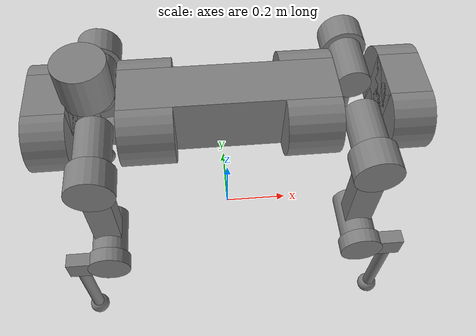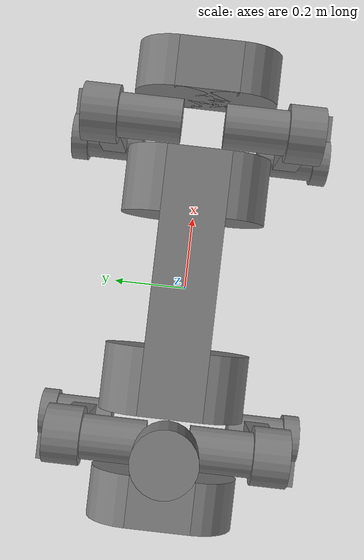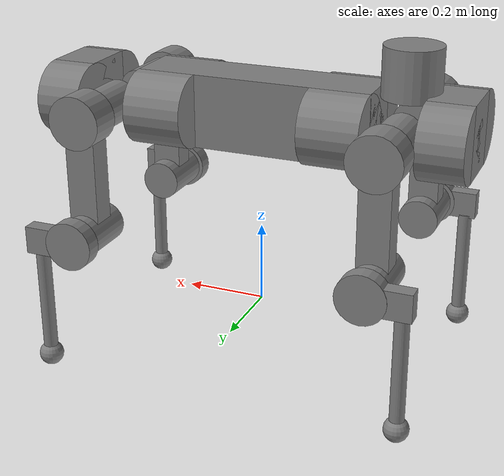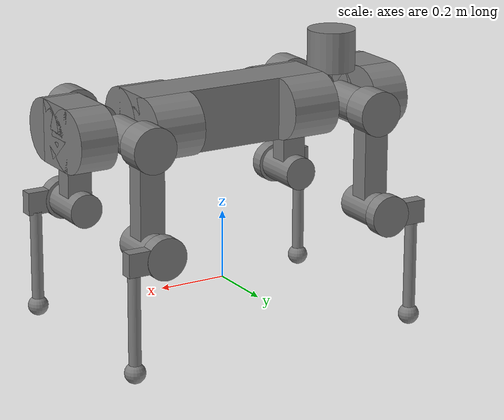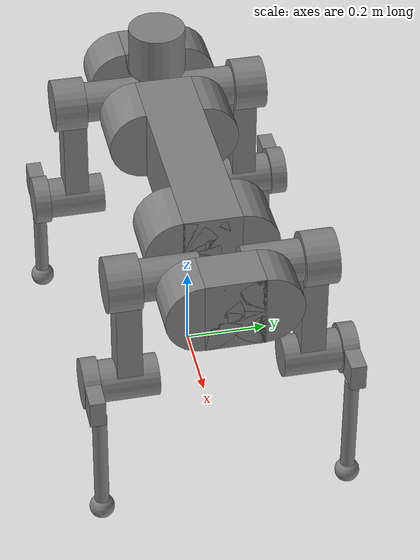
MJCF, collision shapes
<mujoco model="anymal_c">
  <compiler angle="radian" meshdir="assets/" texturedir="assets/"/>

  <option impratio="100" cone="elliptic"/>

  <default>
    <material specular="0" shininess="0.25"/>
    <default class="anymal_c">
      <joint damping="1" frictionloss="0.1"/>
      <default class="visual">
        <geom type="mesh" contype="0" conaffinity="0" group="2"/>
        <default class="visual_zflip"/>
      </default>
      <default class="collision">
        <geom type="cylinder" group="3"/>
        <default class="foot">
          <geom size="0.03 0 0" type="sphere" condim="6" priority="1" friction="0.8 0.02 0.01" solimp="0.015 1 0.031"/>
        </default>
      </default>
      <default class="affine">
        <general ctrlrange="-6.28 6.28" forcerange="-80 80" biastype="affine" gainprm="100" biasprm="0 -100"/>
      </default>
    </default>
  </default>

  <asset>
    <texture type="2d" colorspace="linear" name="base" file="base.png"/>
    <texture type="2d" colorspace="linear" name="top_shell" file="top_shell.png"/>
    <texture type="2d" colorspace="linear" name="bottom_shell" file="bottom_shell.png"/>
    <texture type="2d" colorspace="linear" name="remote" file="remote.png"/>
    <texture type="2d" colorspace="linear" name="hatch" file="hatch.png"/>
    <texture type="2d" colorspace="linear" name="handle" file="handle.png"/>
    <texture type="2d" colorspace="linear" name="face" file="face.png"/>
    <texture type="2d" colorspace="linear" name="battery" file="battery.png"/>
    <texture type="2d" colorspace="linear" name="lidar_cage" file="lidar_cage.png"/>
    <texture type="2d" colorspace="linear" name="depth_camera" file="depth_camera.png"/>
    <texture type="2d" colorspace="linear" name="wide_angle_camera" file="wide_angle_camera.png"/>
    <texture type="2d" colorspace="linear" name="lidar" file="lidar.png"/>
    <texture type="2d" colorspace="linear" name="drive" file="drive.png"/>
    <texture type="2d" colorspace="linear" name="hip_l" file="hip_l.png"/>
    <texture type="2d" colorspace="linear" name="shank_l" file="shank_l.png"/>
    <texture type="2d" colorspace="linear" name="foot" file="foot.png"/>
    <texture type="2d" colorspace="linear" name="thigh" file="thigh.png"/>
    <texture type="2d" colorspace="linear" name="shank_r" file="shank_r.png"/>
    <texture type="2d" colorspace="linear" name="hip_r" file="hip_r.png"/>
    <material name="black_plastic" rgba="0.007 0.007 0.007 1"/>
    <material name="green" rgba="0.052 0.178 0.033 1"/>
    <material name="red" rgba="0.178 0.006 0.005 1"/>
    <material name="yellow" rgba="0.178 0.119 0.006 1"/>
    <material name="lwl" rgba="0.8 0.8 0.8 1"/>
    <material name="base" texture="base"/>
    <material name="top_shell" texture="top_shell"/>
    <material name="bottom_shell" texture="bottom_shell"/>
    <material name="hip_l" texture="hip_l"/>
    <material name="thigh" texture="thigh"/>
    <material name="shank_l" texture="shank_l"/>
    <material name="foot" texture="foot"/>
    <material name="hip_r" texture="hip_r"/>
    <material name="shank" texture="shank_r"/>
    <material name="hatch" texture="hatch"/>
    <material name="remote" texture="remote"/>
    <material name="handle" texture="handle"/>
    <material name="face" texture="face"/>
    <material name="depth_camera" texture="depth_camera"/>
    <material name="wide_angle_camera" texture="wide_angle_camera"/>
    <material name="battery" texture="battery"/>
    <material name="lidar_cage" texture="lidar_cage"/>
    <material name="lidar" texture="lidar"/>
    <material name="drive" texture="drive"/>
    <mesh name="base_0" content_type="model/obj" file="base_0.obj"/>
    <mesh name="base_1" content_type="model/obj" file="base_1.obj"/>
    <mesh name="base_2" content_type="model/obj" file="base_2.obj"/>
    <mesh name="base_3" content_type="model/obj" file="base_3.obj"/>
    <mesh name="base_4" content_type="model/obj" file="base_4.obj"/>
    <mesh name="base_5" content_type="model/obj" file="base_5.obj"/>
    <mesh name="top_shell" content_type="model/obj" file="top_shell.obj"/>
    <mesh name="bottom_shell" content_type="model/obj" file="bottom_shell.obj"/>
    <mesh name="remote" content_type="model/obj" file="remote.obj"/>
    <mesh name="handle" content_type="model/obj" file="handle.obj"/>
    <mesh name="face" content_type="model/obj" file="face.obj"/>
    <mesh name="wide_angle_camera" content_type="model/obj" file="wide_angle_camera.obj"/>
    <mesh name="depth_camera" content_type="model/obj" file="depth_camera.obj"/>
    <mesh name="battery" content_type="model/obj" file="battery.obj"/>
    <mesh name="lidar_cage" content_type="model/obj" file="lidar_cage.obj"/>
    <mesh name="lidar" content_type="model/obj" file="lidar.obj"/>
    <mesh name="drive" content_type="model/obj" file="drive.obj"/>
    <mesh name="hip_l" content_type="model/obj" file="hip_l.obj"/>
    <mesh name="thigh" content_type="model/obj" file="thigh.obj"/>
    <mesh name="shank_l" content_type="model/obj" file="shank_l.obj"/>
    <mesh name="foot" content_type="model/obj" file="foot.obj"/>
    <mesh name="hip_r" content_type="model/obj" file="hip_r.obj"/>
    <mesh name="hatch" content_type="model/obj" file="hatch.obj"/>
    <mesh name="shank_r" content_type="model/obj" file="shank_r.obj"/>
  </asset>

  <worldbody>
    <light name="spotlight" target="base" pos="0 -1 2" dir="0 0 -1" cutoff="30" mode="targetbodycom"/>
    <body name="base" childclass="anymal_c" pos="0 0 0.5">
      <inertial pos="0.0025 0 0.0502071" quat="0.5 0.5 0.5 0.5" mass="19.2035" diaginertia="0.639559 0.624031 0.217374"/>
      <joint type="free" damping="0" frictionloss="0"/>
      <geom class="visual" material="green" mesh="base_0"/>
      <geom class="visual" material="yellow" mesh="base_1"/>
      <geom class="visual" material="red" mesh="base_2"/>
      <geom class="visual" material="black_plastic" mesh="base_3"/>
      <geom class="visual" material="lwl" mesh="base_4"/>
      <geom class="visual" material="base" mesh="base_5"/>
      <geom class="collision" size="0.29 0.07 0.09" type="box"/>
      <geom class="collision" size="0.09 0.0725" pos="0.2175 0.07 0" quat="0.707107 0 0.707107 0"/>
      <geom class="collision" size="0.09 0.0725" pos="-0.2175 0.07 0" quat="0.707107 0 0.707107 0"/>
      <geom class="collision" size="0.09 0.0725" pos="0.2175 -0.07 0" quat="0.707107 0 0.707107 0"/>
      <geom class="collision" size="0.09 0.0725" pos="-0.2175 -0.07 0" quat="0.707107 0 0.707107 0"/>
      <geom class="visual" material="top_shell" mesh="top_shell"/>
      <geom class="visual" material="bottom_shell" mesh="bottom_shell"/>
      <geom class="visual" material="remote" mesh="remote"/>
      <geom class="visual" material="handle" mesh="handle"/>
      <geom class="visual" pos="0.4145 0 0" quat="1 0 0 0" material="face" mesh="face"/>
      <geom class="collision" size="0.055 0.07 0.09" pos="0.4695 0 0" type="box"/>
      <geom class="collision" size="0.09 0.055" pos="0.4695 0.07 0" quat="0.707107 0 0.707107 0"/>
      <geom class="collision" size="0.09 0.055" pos="0.4695 -0.07 0" quat="0.707107 0 0.707107 0"/>
      <geom class="visual" pos="0.46165 0 -0.0292" quat="0.965926 0 0.258819 0" material="depth_camera" mesh="depth_camera"/>
      <geom class="visual" pos="0.513 0 0.01497" material="wide_angle_camera" mesh="wide_angle_camera"/>
      <geom class="visual_zflip" pos="-0.4145 0 0" quat="0 0 0 1" material="face" mesh="face"/>
      <geom class="collision" size="0.055 0.07 0.09" pos="-0.4695 0 0" quat="0 0 0 1" type="box"/>
      <geom class="collision" size="0.09 0.055" pos="-0.4695 -0.07 0" quat="0 -0.707107 0 0.707107"/>
      <geom class="collision" size="0.09 0.055" pos="-0.4695 0.07 0" quat="0 -0.707107 0 0.707107"/>
      <geom class="visual" pos="-0.46165 0 -0.0292" quat="0 -0.258819 0 0.965926" material="depth_camera" mesh="depth_camera"/>
      <geom class="visual_zflip" pos="-0.513 0 0.01497" quat="0 0 0 1" material="wide_angle_camera" mesh="wide_angle_camera"/>
      <geom class="visual" material="battery" mesh="battery"/>
      <geom class="visual" pos="0 0.07646 0.02905" quat="0.683013 -0.183013 0.183013 0.683013" material="depth_camera" mesh="depth_camera"/>
      <geom class="visual" pos="0 -0.07646 0.02905" quat="0.683013 0.183013 0.183013 -0.683013" material="depth_camera" mesh="depth_camera"/>
      <geom class="visual" pos="-0.364 0 0.0735" quat="1 0 0 0" material="lidar_cage" mesh="lidar_cage"/>
      <geom class="collision" size="0.07 0.06" pos="-0.364 0 0.1335"/>
      <geom class="visual" pos="-0.364 0 0.1422" quat="0.707107 0 0 -0.707107" material="lidar" mesh="lidar"/>
      <geom class="visual" pos="0.2999 0.104 0" quat="0.258819 0.965926 0 0" material="drive" mesh="drive"/>
      <geom class="visual" pos="0.2999 -0.104 0" quat="0.258819 -0.965926 0 0" material="drive" mesh="drive"/>
      <geom class="visual" pos="-0.2999 0.104 0" quat="0 0 0.965926 -0.258819" material="drive" mesh="drive"/>
      <geom class="visual" pos="-0.2999 -0.104 0" quat="0 0 -0.965926 -0.258819" material="drive" mesh="drive"/>
      <geom class="visual" pos="0.116 0 0.073" quat="1 0 0 0" material="hatch" mesh="hatch"/>
      <body name="LF_HIP" pos="0.2999 0.104 0" quat="0.258819 0.965926 0 0">
        <inertial pos="0.0566606 -0.015294 -0.00829784" quat="-0.127978 0.709783 -0.135278 0.679359" mass="2.781" diaginertia="0.00585729 0.00491868 0.00329081"/>
        <joint name="LF_HAA" pos="0 0 0" axis="1 0 0" range="-0.72 0.49"/>
        <geom class="visual" pos="0 0 0" quat="0.258819 -0.965926 0 0" material="hip_l" mesh="hip_l"/>
        <geom class="visual" pos="0.0599 -0.0725816 -0.041905" quat="0.183013 -0.683013 0.683013 0.183013" material="drive" mesh="drive"/>
        <geom class="collision" size="0.05 0.07" pos="0.0599 -0.0119598 -0.006905" quat="-0.353553 -0.612372 0.612372 -0.353553"/>
        <body name="LF_THIGH" pos="0.0599 -0.0725816 -0.041905" quat="0.183013 -0.683013 0.683013 0.183013">
          <inertial pos="0.0308147 4.64995e-05 -0.245696" quat="0.993166 -0.00515309 -0.0806592 0.0841972" mass="3.071" diaginertia="0.03025 0.0298943 0.00418465"/>
          <joint name="LF_HFE" pos="0 0 0" axis="1 0 0" range="-9.42478 9.42478"/>
          <geom class="visual" pos="0 0 0" quat="0.707107 0 0 -0.707107" material="thigh" mesh="thigh"/>
          <geom class="collision" size="0.065 0.04" pos="0.04 0 0" quat="0.5 0.5 -0.5 -0.5"/>
          <geom class="collision" size="0.0375 0.03 0.141314" pos="0.03 0 -0.141314" quat="0.707107 0 0 -0.707107" type="box"/>
          <geom class="visual" pos="0.1003 0 -0.285" quat="1 0 0 0" material="drive" mesh="drive"/>
          <geom class="collision" size="0.05 0.07" pos="0.0303 0 -0.285" quat="0.707107 0 0.707107 0"/>
          <body name="LF_SHANK" pos="0.1003 0 -0.285">
            <inertial pos="0.005462 -0.0612528 -0.0806598" quat="0.992934 -0.115904 -0.00105487 -0.0254421" mass="0.58842" diaginertia="0.0101637 0.00923838 0.00111927"/>
            <joint name="LF_KFE" pos="0 0 0" axis="1 0 0" range="-9.42478 9.42478"/>
            <geom class="visual" quat="0.707107 0 0 -0.707107" material="shank_l" mesh="shank_l"/>
            <geom class="collision" size="0.06 0.02" pos="0.02 0 0" quat="0.5 0.5 -0.5 -0.5"/>
            <geom class="collision" size="0.057499 0.03375 0.019" pos="0.02 -0.057499 0" quat="0.5 0.5 -0.5 -0.5" type="box"/>
            <geom class="visual" pos="0.01305 -0.08795 -0.33797" quat="0.382683 0 0 -0.92388" material="foot" mesh="foot"/>
            <geom class="collision" size="0.0175 0.141252" pos="0.01305 -0.08795 -0.168985" quat="0.707107 0 0 -0.707107"/>
            <geom class="foot" pos="0.01305 -0.08795 -0.31547" quat="0.707107 0 0 -0.707107"/>
          </body>
        </body>
      </body>
      <body name="RF_HIP" pos="0.2999 -0.104 0" quat="0.258819 -0.965926 0 0">
        <inertial pos="0.0567633 0.015294 -0.00829784" quat="0.13524 0.679072 0.127985 0.710065" mass="2.781" diaginertia="0.00585928 0.0049205 0.00329064"/>
        <joint name="RF_HAA" pos="0 0 0" axis="1 0 0" range="-0.49 0.72"/>
        <geom class="visual" pos="0 0 0" quat="0.258819 0.965926 0 0" material="hip_r" mesh="hip_r"/>
        <geom class="visual" pos="0.0599 0.0725816 -0.041905" quat="0.183013 0.683013 0.683013 -0.183013" material="drive" mesh="drive"/>
        <geom class="collision" size="0.05 0.07" pos="0.0599 0.0119598 -0.006905" quat="-0.353553 0.612372 0.612372 0.353553"/>
        <body name="RF_THIGH" pos="0.0599 0.0725816 -0.041905" quat="0.183013 0.683013 0.683013 -0.183013">
          <inertial pos="0.0308147 4.64995e-05 -0.245696" quat="0.992775 -0.00512735 -0.0806685 0.0886811" mass="3.071" diaginertia="0.0302511 0.0298933 0.0041845"/>
          <joint name="RF_HFE" pos="0 0 0" axis="-1 0 0" range="-9.42478 9.42478"/>
          <geom class="visual" pos="0 0 0" quat="0.707107 0 0 -0.707107" material="thigh" mesh="thigh"/>
          <geom class="collision" size="0.065 0.04" pos="0.04 0 0" quat="0.5 0.5 0.5 0.5"/>
          <geom class="collision" size="0.0375 0.03 0.141314" pos="0.03 0 -0.141314" quat="0.707107 0 0 0.707107" type="box"/>
          <geom class="visual" pos="0.1003 0 -0.285" quat="1 0 0 0" material="drive" mesh="drive"/>
          <geom class="collision" size="0.05 0.07" pos="0.0303 0 -0.285" quat="0.707107 0 0.707107 0"/>
          <body name="RF_SHANK" pos="0.1003 0 -0.285">
            <inertial pos="0.005462 0.0612528 -0.0806598" quat="0.992934 0.115904 -0.00105487 0.0254421" mass="0.58842" diaginertia="0.0101637 0.00923838 0.00111927"/>
            <joint name="RF_KFE" pos="0 0 0" axis="-1 0 0" range="-9.42478 9.42478"/>
            <geom class="visual" quat="0.707107 0 0 0.707107" material="shank" mesh="shank_r"/>
            <geom class="collision" size="0.06 0.02" pos="0.02 0 0" quat="0.5 0.5 0.5 0.5"/>
            <geom class="collision" size="0.057499 0.03375 0.019" pos="0.02 0.057499 0" quat="0.5 0.5 0.5 0.5" type="box"/>
            <geom class="visual" pos="0.01305 0.08795 -0.33797" quat="0.382683 0 0 0.92388" material="foot" mesh="foot"/>
            <geom class="collision" size="0.0175 0.141252" pos="0.01305 0.08795 -0.168985" quat="0.707107 0 0 0.707107"/>
            <geom class="foot" pos="0.01305 0.08795 -0.31547" quat="0.707107 0 0 0.707107"/>
          </body>
        </body>
      </body>
      <body name="LH_HIP" pos="-0.2999 0.104 0" quat="0 0 0.965926 -0.258819">
        <inertial pos="0.0567633 0.015294 -0.00829784" quat="0.13524 0.679072 0.127985 0.710065" mass="2.781" diaginertia="0.00585928 0.0049205 0.00329064"/>
        <joint name="LH_HAA" pos="0 0 0" axis="-1 0 0" range="-0.72 0.49"/>
        <geom class="visual" pos="0 0 0" quat="-0.258819 -0.965926 0 0" material="hip_r" mesh="hip_r"/>
        <geom class="visual" pos="0.0599 0.0725816 -0.041905" quat="0.183013 0.683013 0.683013 -0.183013" material="drive" mesh="drive"/>
        <geom class="collision" size="0.05 0.07" pos="0.0599 0.0119598 -0.006905" quat="-0.353553 0.612372 0.612372 0.353553"/>
        <body name="LH_THIGH" pos="0.0599 0.0725816 -0.041905" quat="0.183013 0.683013 0.683013 -0.183013">
          <inertial pos="0.0308147 4.64995e-05 -0.245696" quat="0.992775 -0.00512735 -0.0806685 0.0886811" mass="3.071" diaginertia="0.0302511 0.0298933 0.0041845"/>
          <joint name="LH_HFE" pos="0 0 0" axis="1 0 0" range="-9.42478 9.42478"/>
          <geom class="visual" pos="0 0 0" quat="0.707107 0 0 -0.707107" material="thigh" mesh="thigh"/>
          <geom class="collision" size="0.065 0.04" pos="0.04 0 0" quat="0.5 0.5 -0.5 -0.5"/>
          <geom class="collision" size="0.0375 0.03 0.141314" pos="0.03 0 -0.141314" quat="0.707107 0 0 -0.707107" type="box"/>
          <geom class="visual" pos="0.1003 0 -0.285" quat="1 0 0 0" material="drive" mesh="drive"/>
          <geom class="collision" size="0.05 0.07" pos="0.0303 0 -0.285" quat="0.707107 0 0.707107 0"/>
          <body name="LH_SHANK" pos="0.1003 0 -0.285">
            <inertial pos="0.005462 0.0612528 -0.0806598" quat="0.992934 0.115904 -0.00105487 0.0254421" mass="0.58842" diaginertia="0.0101637 0.00923838 0.00111927"/>
            <joint name="LH_KFE" pos="0 0 0" axis="1 0 0" range="-9.42478 9.42478"/>
            <geom class="visual" quat="-0.707107 0 0 -0.707107" material="shank" mesh="shank_r"/>
            <geom class="collision" size="0.06 0.02" pos="0.02 0 0" quat="0.5 0.5 -0.5 -0.5"/>
            <geom class="collision" size="0.057499 0.03375 0.019" pos="0.02 0.057499 0" quat="0.5 0.5 -0.5 -0.5" type="box"/>
            <geom class="visual" pos="0.01305 0.08795 -0.33797" quat="-0.382683 0 0 -0.92388" material="foot" mesh="foot"/>
            <geom class="collision" size="0.0175 0.141252" pos="0.01305 0.08795 -0.168985" quat="0.707107 0 0 -0.707107"/>
            <geom class="foot" pos="0.01305 0.08795 -0.31547" quat="0.707107 0 0 -0.707107"/>
          </body>
        </body>
      </body>
      <body name="RH_HIP" pos="-0.2999 -0.104 0" quat="0 0 -0.965926 -0.258819">
        <inertial pos="0.0566606 -0.015294 -0.00829784" quat="-0.127978 0.709783 -0.135278 0.679359" mass="2.781" diaginertia="0.00585729 0.00491868 0.00329081"/>
        <joint name="RH_HAA" pos="0 0 0" axis="-1 0 0" range="-0.49 0.72"/>
        <geom class="visual" pos="0 0 0" quat="-0.258819 0.965926 0 0" material="hip_l" mesh="hip_l"/>
        <geom class="visual" pos="0.0599 -0.0725816 -0.041905" quat="-0.183013 0.683013 -0.683013 -0.183013" material="drive" mesh="drive"/>
        <geom class="collision" size="0.05 0.07" pos="0.0599 -0.0119598 -0.006905" quat="0.353553 0.612372 -0.612372 0.353553"/>
        <body name="RH_THIGH" pos="0.0599 -0.0725816 -0.041905" quat="-0.183013 0.683013 -0.683013 -0.183013">
          <inertial pos="0.0308147 4.64995e-05 -0.245696" quat="0.993166 -0.00515309 -0.0806592 0.0841972" mass="3.071" diaginertia="0.03025 0.0298943 0.00418465"/>
          <joint name="RH_HFE" pos="0 0 0" axis="-1 0 0" range="-9.42478 9.42478"/>
          <geom class="visual" pos="0 0 0" quat="0.707107 0 0 -0.707107" material="thigh" mesh="thigh"/>
          <geom class="collision" size="0.065 0.04" pos="0.04 0 0" quat="0.5 0.5 0.5 0.5"/>
          <geom class="collision" size="0.0375 0.03 0.141314" pos="0.03 0 -0.141314" quat="0.707107 0 0 0.707107" type="box"/>
          <geom class="visual" pos="0.1003 0 -0.285" quat="1 0 0 0" material="drive" mesh="drive"/>
          <geom class="collision" size="0.05 0.07" pos="0.0303 0 -0.285" quat="0.707107 0 0.707107 0"/>
          <body name="RH_SHANK" pos="0.1003 0 -0.285">
            <inertial pos="0.005462 -0.0612528 -0.0806598" quat="0.992934 -0.115904 -0.00105487 -0.0254421" mass="0.58842" diaginertia="0.0101637 0.00923838 0.00111927"/>
            <joint name="RH_KFE" pos="0 0 0" axis="-1 0 0" range="-9.42478 9.42478"/>
            <geom class="visual" quat="0.707107 0 0 -0.707107" material="shank_l" mesh="shank_l"/>
            <geom class="collision" size="0.06 0.02" pos="0.02 0 0" quat="0.5 0.5 0.5 0.5"/>
            <geom class="collision" size="0.057499 0.03375 0.019" pos="0.02 -0.057499 0" quat="0.5 0.5 0.5 0.5" type="box"/>
            <geom class="visual" pos="0.01305 -0.08795 -0.33797" quat="0.382683 0 0 -0.92388" material="foot" mesh="foot"/>
            <geom class="collision" size="0.0175 0.141252" pos="0.01305 -0.08795 -0.168985" quat="0.707107 0 0 0.707107"/>
            <geom class="foot" pos="0.01305 -0.08795 -0.31547" quat="0.707107 0 0 0.707107"/>
          </body>
        </body>
      </body>
    </body>
  </worldbody>

  <contact>
    <exclude body1="base" body2="LF_THIGH"/>
    <exclude body1="base" body2="RF_THIGH"/>
    <exclude body1="base" body2="LH_THIGH"/>
    <exclude body1="base" body2="RH_THIGH"/>
  </contact>

  <actuator>
    <general name="LF_HAA" class="affine" joint="LF_HAA"/>
    <general name="LF_HFE" class="affine" joint="LF_HFE"/>
    <general name="LF_KFE" class="affine" joint="LF_KFE"/>
    <general name="RF_HAA" class="affine" joint="RF_HAA"/>
    <general name="RF_HFE" class="affine" joint="RF_HFE"/>
    <general name="RF_KFE" class="affine" joint="RF_KFE"/>
    <general name="LH_HAA" class="affine" joint="LH_HAA"/>
    <general name="LH_HFE" class="affine" joint="LH_HFE"/>
    <general name="LH_KFE" class="affine" joint="LH_KFE"/>
    <general name="RH_HAA" class="affine" joint="RH_HAA"/>
    <general name="RH_HFE" class="affine" joint="RH_HFE"/>
    <general name="RH_KFE" class="affine" joint="RH_KFE"/>
  </actuator>
</mujoco>
